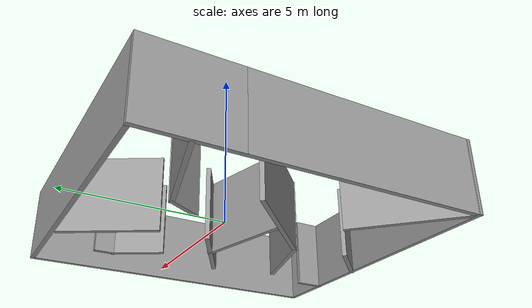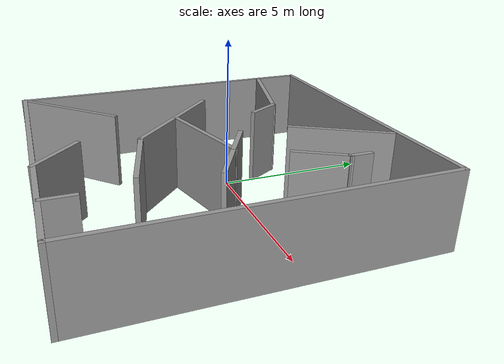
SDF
<?xml version='1.0'?>
<sdf version='1.7'>
  <model name='model'>
    <pose>1.00571 -0.981226 0 0 -0 0</pose>
    <link name='Wall_10'>
      <collision name='Wall_10_Collision'>
        <geometry>
          <box>
            <size>4.25 0.15 2.5</size>
          </box>
        </geometry>
        <pose>0 0 1.25 0 -0 0</pose>
      </collision>
      <visual name='Wall_10_Visual'>
        <pose>0 0 1.25 0 -0 0</pose>
        <geometry>
          <box>
            <size>4.25 0.15 2.5</size>
          </box>
        </geometry>
        <material>
          <script>
            <uri>file://media/materials/scripts/gazebo.material</uri>
            <name>Gazebo/Grey</name>
          </script>
          <ambient>1 1 1 1</ambient>
        </material>
        <meta>
          <layer>0</layer>
        </meta>
      </visual>
      <pose>-1.36613 -0.723206 0 0 -0 -0.785398</pose>
    </link>
    <link name='Wall_12'>
      <collision name='Wall_12_Collision'>
        <geometry>
          <box>
            <size>3.25 0.15 2.5</size>
          </box>
        </geometry>
        <pose>0 0 1.25 0 -0 0</pose>
      </collision>
      <visual name='Wall_12_Visual'>
        <pose>0 0 1.25 0 -0 0</pose>
        <geometry>
          <box>
            <size>3.25 0.15 2.5</size>
          </box>
        </geometry>
        <material>
          <script>
            <uri>file://media/materials/scripts/gazebo.material</uri>
            <name>Gazebo/Grey</name>
          </script>
          <ambient>1 1 1 1</ambient>
        </material>
        <meta>
          <layer>0</layer>
        </meta>
      </visual>
      <pose>0.180409 -0.249028 0 0 -0 0.261799</pose>
    </link>
    <link name='Wall_14'>
      <collision name='Wall_14_Collision'>
        <geometry>
          <box>
            <size>3.25 0.15 2.5</size>
          </box>
        </geometry>
        <pose>0 0 1.25 0 -0 0</pose>
      </collision>
      <visual name='Wall_14_Visual'>
        <pose>0 0 1.25 0 -0 0</pose>
        <geometry>
          <box>
            <size>3.25 0.15 2.5</size>
          </box>
        </geometry>
        <material>
          <script>
            <uri>file://media/materials/scripts/gazebo.material</uri>
            <name>Gazebo/Grey</name>
          </script>
          <ambient>1 1 1 1</ambient>
        </material>
        <meta>
          <layer>0</layer>
        </meta>
      </visual>
      <pose>1.36492 3.81961 0 0 -0 -2.0944</pose>
    </link>
    <link name='Wall_16'>
      <collision name='Wall_16_Collision'>
        <geometry>
          <box>
            <size>3.5 0.15 2.5</size>
          </box>
        </geometry>
        <pose>0 0 1.25 0 -0 0</pose>
      </collision>
      <visual name='Wall_16_Visual'>
        <pose>0 0 1.25 0 -0 0</pose>
        <geometry>
          <box>
            <size>3.5 0.15 2.5</size>
          </box>
        </geometry>
        <material>
          <script>
            <uri>file://media/materials/scripts/gazebo.material</uri>
            <name>Gazebo/Grey</name>
          </script>
          <ambient>1 1 1 1</ambient>
        </material>
        <meta>
          <layer>0</layer>
        </meta>
      </visual>
      <pose>-3.21673 3.35186 0 0 -0 -0.261799</pose>
    </link>
    <link name='Wall_17'>
      <collision name='Wall_17_Collision'>
        <geometry>
          <box>
            <size>1.25 0.15 2.5</size>
          </box>
        </geometry>
        <pose>0 0 1.25 0 -0 0</pose>
      </collision>
      <visual name='Wall_17_Visual'>
        <pose>0 0 1.25 0 -0 0</pose>
        <geometry>
          <box>
            <size>1.25 0.15 2.5</size>
          </box>
        </geometry>
        <material>
          <script>
            <uri>file://media/materials/scripts/gazebo.material</uri>
            <name>Gazebo/Grey</name>
          </script>
          <ambient>1 1 1 1</ambient>
        </material>
        <meta>
          <layer>0</layer>
        </meta>
      </visual>
      <pose>-1.3238 2.44203 0 0 -0 -1.0472</pose>
    </link>
    <link name='Wall_19'>
      <collision name='Wall_19_Collision'>
        <geometry>
          <box>
            <size>4 0.15 2.5</size>
          </box>
        </geometry>
        <pose>0 0 1.25 0 -0 0</pose>
      </collision>
      <visual name='Wall_19_Visual'>
        <pose>0 0 1.25 0 -0 0</pose>
        <geometry>
          <box>
            <size>4 0.15 2.5</size>
          </box>
        </geometry>
        <material>
          <script>
            <uri>file://media/materials/scripts/gazebo.material</uri>
            <name>Gazebo/Grey</name>
          </script>
          <ambient>1 1 1 1</ambient>
        </material>
        <meta>
          <layer>0</layer>
        </meta>
      </visual>
      <pose>-3.54829 -3.91507 0 0 -0 0.785398</pose>
    </link>
    <link name='Wall_21'>
      <collision name='Wall_21_Collision'>
        <geometry>
          <box>
            <size>2 0.15 2.5</size>
          </box>
        </geometry>
        <pose>0 0 1.25 0 -0 0</pose>
      </collision>
      <visual name='Wall_21_Visual'>
        <pose>0 0 1.25 0 -0 0</pose>
        <geometry>
          <box>
            <size>2 0.15 2.5</size>
          </box>
        </geometry>
        <material>
          <script>
            <uri>file://media/materials/scripts/gazebo.material</uri>
            <name>Gazebo/Grey</name>
          </script>
          <ambient>1 1 1 1</ambient>
        </material>
        <meta>
          <layer>0</layer>
        </meta>
      </visual>
      <pose>0.407956 -4.63861 0 0 -0 -0.785398</pose>
    </link>
    <link name='Wall_23'>
      <collision name='Wall_23_Collision'>
        <geometry>
          <box>
            <size>2.75 0.15 2.5</size>
          </box>
        </geometry>
        <pose>0 0 1.25 0 -0 0</pose>
      </collision>
      <visual name='Wall_23_Visual'>
        <pose>0 0 1.25 0 -0 0</pose>
        <geometry>
          <box>
            <size>2.75 0.15 2.5</size>
          </box>
        </geometry>
        <material>
          <script>
            <uri>file://media/materials/scripts/gazebo.material</uri>
            <name>Gazebo/Grey</name>
          </script>
          <ambient>1 1 1 1</ambient>
        </material>
        <meta>
          <layer>0</layer>
        </meta>
      </visual>
      <pose>1.33915 -2.50924 0 0 -0 -0.261799</pose>
    </link>
    <link name='Wall_26'>
      <collision name='Wall_26_Collision'>
        <geometry>
          <box>
            <size>1.75 0.15 2.5</size>
          </box>
        </geometry>
        <pose>0 0 1.25 0 -0 0</pose>
      </collision>
      <visual name='Wall_26_Visual'>
        <pose>0 0 1.25 0 -0 0</pose>
        <geometry>
          <box>
            <size>1.75 0.15 2.5</size>
          </box>
        </geometry>
        <material>
          <script>
            <uri>file://media/materials/scripts/gazebo.material</uri>
            <name>Gazebo/Grey</name>
          </script>
          <ambient>1 1 1 1</ambient>
        </material>
        <meta>
          <layer>0</layer>
        </meta>
      </visual>
      <pose>2.81058 2.32781 0 0 -0 -2.0944</pose>
    </link>
    <link name='Wall_28'>
      <collision name='Wall_28_Collision'>
        <geometry>
          <box>
            <size>0.75 0.15 2.5</size>
          </box>
        </geometry>
        <pose>0 0 1.25 0 -0 0</pose>
      </collision>
      <visual name='Wall_28_Visual'>
        <pose>0 0 1.25 0 -0 0</pose>
        <geometry>
          <box>
            <size>0.75 0.15 2.5</size>
          </box>
        </geometry>
        <material>
          <script>
            <uri>file://media/materials/scripts/gazebo.material</uri>
            <name>Gazebo/Grey</name>
          </script>
          <ambient>1 1 1 1</ambient>
        </material>
        <meta>
          <layer>0</layer>
        </meta>
      </visual>
      <pose>3.21058 3.32063 0 0 -0 1.5708</pose>
    </link>
    <link name='Wall_3'>
      <collision name='Wall_3_Collision'>
        <geometry>
          <box>
            <size>7.75 0.15 2.5</size>
          </box>
        </geometry>
        <pose>0 0 1.25 0 -0 0</pose>
      </collision>
      <visual name='Wall_3_Visual'>
        <pose>0 0 1.25 0 -0 0</pose>
        <geometry>
          <box>
            <size>7.75 0.15 2.5</size>
          </box>
        </geometry>
        <material>
          <script>
            <uri>file://media/materials/scripts/gazebo.material</uri>
            <name>Gazebo/Grey</name>
          </script>
          <ambient>1 1 1 1</ambient>
        </material>
        <meta>
          <layer>0</layer>
        </meta>
      </visual>
      <pose>-4.90947 -1.32625 0 0 -0 -1.5708</pose>
    </link>
    <link name='Wall_30'>
      <collision name='Wall_30_Collision'>
        <geometry>
          <box>
            <size>1.75 0.15 2.5</size>
          </box>
        </geometry>
        <pose>0 0 1.25 0 -0 0</pose>
      </collision>
      <visual name='Wall_30_Visual'>
        <pose>0 0 1.25 0 -0 0</pose>
        <geometry>
          <box>
            <size>1.75 0.15 2.5</size>
          </box>
        </geometry>
        <material>
          <script>
            <uri>file://media/materials/scripts/gazebo.material</uri>
            <name>Gazebo/Grey</name>
          </script>
          <ambient>1 1 1 1</ambient>
        </material>
        <meta>
          <layer>0</layer>
        </meta>
      </visual>
      <pose>2.37041 -0.247859 0 0 -0 -0.523599</pose>
    </link>
    <link name='Wall_32'>
      <collision name='Wall_32_Collision'>
        <geometry>
          <box>
            <size>1.5 0.15 2.5</size>
          </box>
        </geometry>
        <pose>0 0 1.25 0 -0 0</pose>
      </collision>
      <visual name='Wall_32_Visual'>
        <pose>0 0 1.25 0 -0 0</pose>
        <geometry>
          <box>
            <size>1.5 0.15 2.5</size>
          </box>
        </geometry>
        <material>
          <script>
            <uri>file://media/materials/scripts/gazebo.material</uri>
            <name>Gazebo/Grey</name>
          </script>
          <ambient>1 1 1 1</ambient>
        </material>
        <meta>
          <layer>0</layer>
        </meta>
      </visual>
      <pose>1.09303 0.489641 0 0 -0 2.61799</pose>
    </link>
    <link name='Wall_34'>
      <collision name='Wall_34_Collision'>
        <geometry>
          <box>
            <size>1 0.15 2.5</size>
          </box>
        </geometry>
        <pose>0 0 1.25 0 -0 0</pose>
      </collision>
      <visual name='Wall_34_Visual'>
        <pose>0 0 1.25 0 -0 0</pose>
        <geometry>
          <box>
            <size>1 0.15 2.5</size>
          </box>
        </geometry>
        <material>
          <script>
            <uri>file://media/materials/scripts/gazebo.material</uri>
            <name>Gazebo/Grey</name>
          </script>
          <ambient>1 1 1 1</ambient>
        </material>
        <meta>
          <layer>0</layer>
        </meta>
      </visual>
      <pose>3.08822 -4.81373 0 0 -0 1.5708</pose>
    </link>
    <link name='Wall_5'>
      <collision name='Wall_5_Collision'>
        <geometry>
          <box>
            <size>3 0.15 2.5</size>
          </box>
        </geometry>
        <pose>0 0 1.25 0 -0 0</pose>
      </collision>
      <visual name='Wall_5_Visual'>
        <pose>0 0 1.25 0 -0 0</pose>
        <geometry>
          <box>
            <size>3 0.15 2.5</size>
          </box>
        </geometry>
        <material>
          <script>
            <uri>file://media/materials/scripts/gazebo.material</uri>
            <name>Gazebo/Grey</name>
          </script>
          <ambient>1 1 1 1</ambient>
        </material>
        <meta>
          <layer>0</layer>
        </meta>
      </visual>
      <pose>-4.90947 3.89875 0 0 -0 1.5708</pose>
    </link>
    <link name='Wall_6'>
      <collision name='Wall_6_Collision'>
        <geometry>
          <box>
            <size>10 0.15 2.5</size>
          </box>
        </geometry>
        <pose>0 0 1.25 0 -0 0</pose>
      </collision>
      <visual name='Wall_6_Visual'>
        <pose>0 0 1.25 0 -0 0</pose>
        <geometry>
          <box>
            <size>10 0.15 2.5</size>
          </box>
        </geometry>
        <material>
          <script>
            <uri>file://media/materials/scripts/gazebo.material</uri>
            <name>Gazebo/Grey</name>
          </script>
          <ambient>1 1 1 1</ambient>
        </material>
        <meta>
          <layer>0</layer>
        </meta>
      </visual>
      <pose>0.015533 5.32375 0 0 -0 0</pose>
    </link>
    <link name='Wall_7'>
      <collision name='Wall_7_Collision'>
        <geometry>
          <box>
            <size>10.75 0.15 2.5</size>
          </box>
        </geometry>
        <pose>0 0 1.25 0 -0 0</pose>
      </collision>
      <visual name='Wall_7_Visual'>
        <pose>0 0 1.25 0 -0 0</pose>
        <geometry>
          <box>
            <size>10.75 0.15 2.5</size>
          </box>
        </geometry>
        <material>
          <script>
            <uri>file://media/materials/scripts/gazebo.material</uri>
            <name>Gazebo/Grey</name>
          </script>
          <ambient>1 1 1 1</ambient>
        </material>
        <meta>
          <layer>0</layer>
        </meta>
      </visual>
      <pose>4.94053 0.023746 0 0 -0 -1.5708</pose>
    </link>
    <link name='Wall_8'>
      <collision name='Wall_8_Collision'>
        <geometry>
          <box>
            <size>10 0.15 2.5</size>
          </box>
        </geometry>
        <pose>0 0 1.25 0 -0 0</pose>
      </collision>
      <visual name='Wall_8_Visual'>
        <pose>0 0 1.25 0 -0 0</pose>
        <geometry>
          <box>
            <size>10 0.15 2.5</size>
          </box>
        </geometry>
        <material>
          <script>
            <uri>file://media/materials/scripts/gazebo.material</uri>
            <name>Gazebo/Grey</name>
          </script>
          <ambient>1 1 1 1</ambient>
        </material>
        <meta>
          <layer>0</layer>
        </meta>
      </visual>
      <pose>0.015533 -5.27625 0 0 -0 3.14159</pose>
    </link>
    <static>1</static>
  </model>
</sdf>
